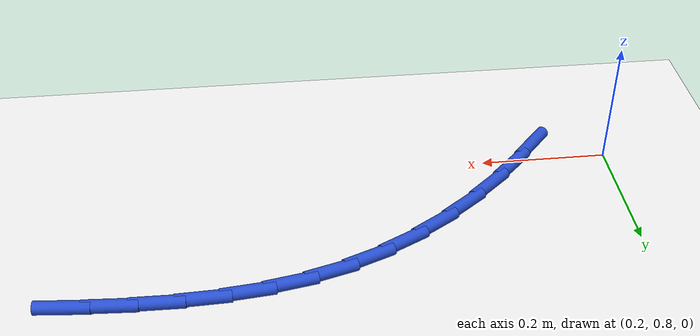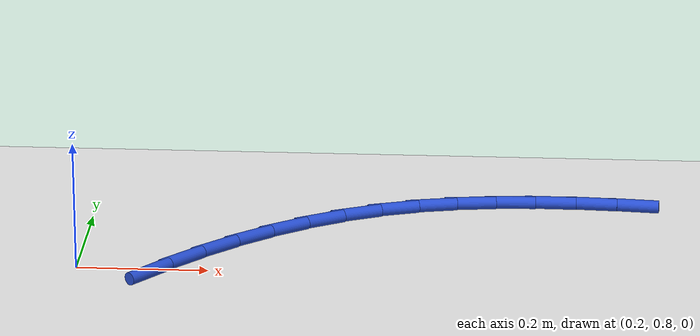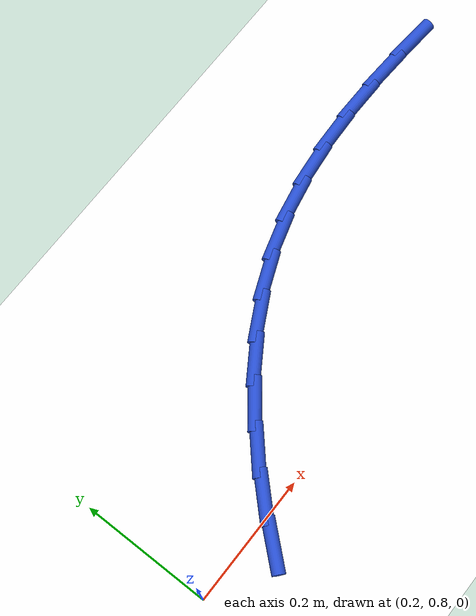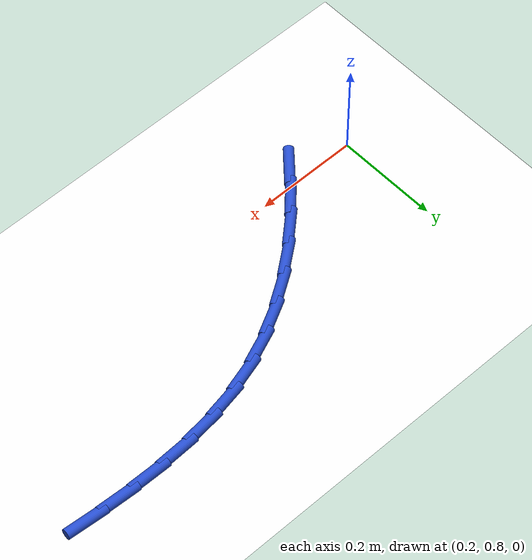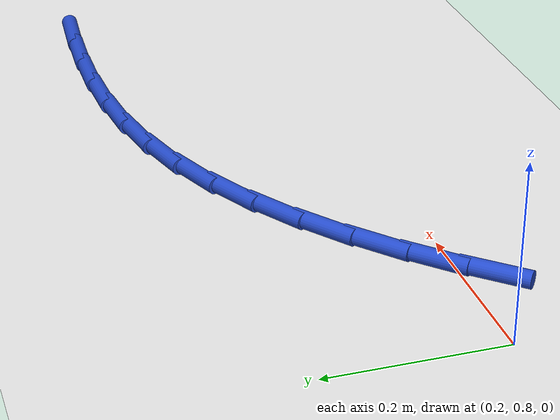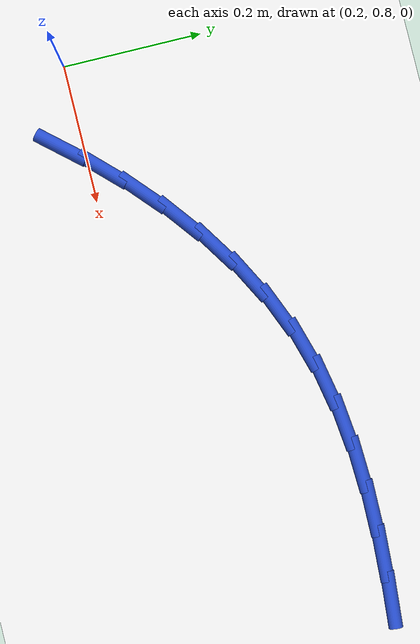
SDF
<sdf version="1.6">
 <world name="default">
  <model name="ground_plane">
   <static>1</static>
   <link name="link">
    <collision name="collision">
     <geometry><plane><normal>0 0 1</normal><size>100 100</size></plane></geometry>
     <surface><friction><ode><mu>100</mu><mu2>50</mu2></ode></friction></surface>
    </collision>
    <visual name="visual">
     <cast_shadows>0</cast_shadows>
     <geometry><plane><normal>0 0 1</normal><size>100 100</size></plane></geometry>
     <material>
      <script><uri>file://media/materials/scripts/gazebo.material</uri><name>Gazebo/WhiteGlow</name></script>
     </material>
    </visual>
   </link>
  </model>
  <model name="line">
   <link name="link_13">
    <pose>0.31380623929987245 0.7700077677439872 0.01 0 1.57 0.851381998003916</pose>
    <collision name="collision">
     <geometry><cylinder><radius>0.01</radius><length>0.08</length></cylinder></geometry>
    </collision>
    <visual name="visual">
     <material>
      <script><name>Gazebo/Blue</name><uri>file://media/materials/scripts/gazebo.material</uri></script>
     </material>
     <geometry><cylinder><radius>0.01</radius><length>0.08</length></cylinder></geometry>
    </visual>
   </link>
   <link name="link_14">
    <pose>0.3575444392466425 0.8199353825570435 0.01 0 1.57 0.79281963239879</pose>
    <collision name="collision">
     <geometry><cylinder><radius>0.01</radius><length>0.08</length></cylinder></geometry>
    </collision>
    <visual name="visual">
     <material>
      <script><name>Gazebo/Blue</name><uri>file://media/materials/scripts/gazebo.material</uri></script>
     </material>
     <geometry><cylinder><radius>0.01</radius><length>0.08</length></cylinder></geometry>
    </visual>
   </link>
   <link name="link_15">
    <pose>0.4035970523504804 0.8666766754011814 0.01 0 1.57 0.7278915527970488</pose>
    <collision name="collision">
     <geometry><cylinder><radius>0.01</radius><length>0.08</length></cylinder></geometry>
    </collision>
    <visual name="visual">
     <material>
      <script><name>Gazebo/Blue</name><uri>file://media/materials/scripts/gazebo.material</uri></script>
     </material>
     <geometry><cylinder><radius>0.01</radius><length>0.08</length></cylinder></geometry>
    </visual>
   </link>
   <link name="link_16">
    <pose>0.451905909081812 0.9097260319190345 0.01 0 1.57 0.6556996139169451</pose>
    <collision name="collision">
     <geometry><cylinder><radius>0.01</radius><length>0.08</length></cylinder></geometry>
    </collision>
    <visual name="visual">
     <material>
      <script><name>Gazebo/Blue</name><uri>file://media/materials/scripts/gazebo.material</uri></script>
     </material>
     <geometry><cylinder><radius>0.01</radius><length>0.08</length></cylinder></geometry>
    </visual>
   </link>
   <link name="link_17">
    <pose>0.5024128399110634 0.948577837753236 0.01 0 1.57 0.5754158555246247</pose>
    <collision name="collision">
     <geometry><cylinder><radius>0.01</radius><length>0.08</length></cylinder></geometry>
    </collision>
    <visual name="visual">
     <material>
      <script><name>Gazebo/Blue</name><uri>file://media/materials/scripts/gazebo.material</uri></script>
     </material>
     <geometry><cylinder><radius>0.01</radius><length>0.08</length></cylinder></geometry>
    </visual>
   </link>
   <link name="link_18">
    <pose>0.5550596753086607 0.9827264785464196 0.01 0 1.57 0.48641261059889523</pose>
    <collision name="collision">
     <geometry><cylinder><radius>0.01</radius><length>0.08</length></cylinder></geometry>
    </collision>
    <visual name="visual">
     <material>
      <script><name>Gazebo/Blue</name><uri>file://media/materials/scripts/gazebo.material</uri></script>
     </material>
     <geometry><cylinder><radius>0.01</radius><length>0.08</length></cylinder></geometry>
    </visual>
   </link>
   <link name="link_19">
    <pose>0.60978824574503 1.011666339941219 0.01 0 1.57 0.38844980191815365</pose>
    <collision name="collision">
     <geometry><cylinder><radius>0.01</radius><length>0.08</length></cylinder></geometry>
    </collision>
    <visual name="visual">
     <material>
      <script><name>Gazebo/Blue</name><uri>file://media/materials/scripts/gazebo.material</uri></script>
     </material>
     <geometry><cylinder><radius>0.01</radius><length>0.08</length></cylinder></geometry>
    </visual>
   </link>
   <link name="link_20">
    <pose>0.666540381690597 1.034891807580267 0.01 0 1.57 0.284463193762418</pose>
    <collision name="collision">
     <geometry><cylinder><radius>0.01</radius><length>0.08</length></cylinder></geometry>
    </collision>
    <visual name="visual">
     <material>
      <script><name>Gazebo/Blue</name><uri>file://media/materials/scripts/gazebo.material</uri></script>
     </material>
     <geometry><cylinder><radius>0.01</radius><length>0.08</length></cylinder></geometry>
    </visual>
   </link>
   <link name="link_21">
    <pose>0.7252353962377606 1.0520538079157435 0.01 0 1.57 0.18901078969541368</pose>
    <collision name="collision">
     <geometry><cylinder><radius>0.01</radius><length>0.08</length></cylinder></geometry>
    </collision>
    <visual name="visual">
     <material>
      <script><name>Gazebo/Blue</name><uri>file://media/materials/scripts/gazebo.material</uri></script>
     </material>
     <geometry><cylinder><radius>0.01</radius><length>0.08</length></cylinder></geometry>
    </visual>
   </link>
   <link name="link_22">
    <pose>0.7856757397410729 1.0636156971403703 0.01 0 1.57 0.10753910210893301</pose>
    <collision name="collision">
     <geometry><cylinder><radius>0.01</radius><length>0.08</length></cylinder></geometry>
    </collision>
    <visual name="visual">
     <material>
      <script><name>Gazebo/Blue</name><uri>file://media/materials/scripts/gazebo.material</uri></script>
     </material>
     <geometry><cylinder><radius>0.01</radius><length>0.08</length></cylinder></geometry>
    </visual>
   </link>
   <link name="link_23">
    <pose>0.847626067779669 1.0703035807213606 0.01 0 1.57 0.040154253519586215</pose>
    <collision name="collision">
     <geometry><cylinder><radius>0.01</radius><length>0.08</length></cylinder></geometry>
    </collision>
    <visual name="visual">
     <material>
      <script><name>Gazebo/Blue</name><uri>file://media/materials/scripts/gazebo.material</uri></script>
     </material>
     <geometry><cylinder><radius>0.01</radius><length>0.08</length></cylinder></geometry>
    </visual>
   </link>
   <link name="link_24">
    <pose>0.9108510168628212 1.0728436966996278 0.01 0 1.57 -0.013714606732922153</pose>
    <collision name="collision">
     <geometry><cylinder><radius>0.01</radius><length>0.08</length></cylinder></geometry>
    </collision>
    <visual name="visual">
     <material>
      <script><name>Gazebo/Blue</name><uri>file://media/materials/scripts/gazebo.material</uri></script>
     </material>
     <geometry><cylinder><radius>0.01</radius><length>0.08</length></cylinder></geometry>
    </visual>
   </link>
   <link name="link_25">
    <pose>0.9751152234998002 1.071962283116083 0.01 0 1.57 -0.05491337818711427</pose>
    <collision name="collision">
     <geometry><cylinder><radius>0.01</radius><length>0.08</length></cylinder></geometry>
    </collision>
    <visual name="visual">
     <material>
      <script><name>Gazebo/Blue</name><uri>file://media/materials/scripts/gazebo.material</uri></script>
     </material>
     <geometry><cylinder><radius>0.01</radius><length>0.08</length></cylinder></geometry>
    </visual>
   </link>
   <link name="link_26">
    <pose>1.040183324199878 1.0683855780116385 0.01 0 1.57 -0.08429162045372667</pose>
    <collision name="collision">
     <geometry><cylinder><radius>0.01</radius><length>0.08</length></cylinder></geometry>
    </collision>
    <visual name="visual">
     <material>
      <script><name>Gazebo/Blue</name><uri>file://media/materials/scripts/gazebo.material</uri></script>
     </material>
     <geometry><cylinder><radius>0.01</radius><length>0.08</length></cylinder></geometry>
    </visual>
   </link>
  </model>
 </world>
</sdf>
